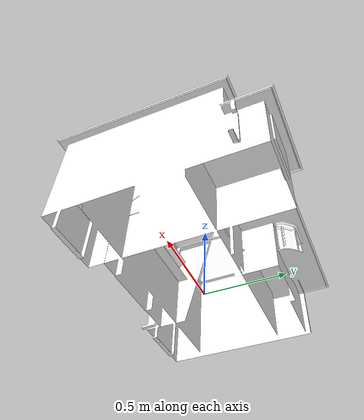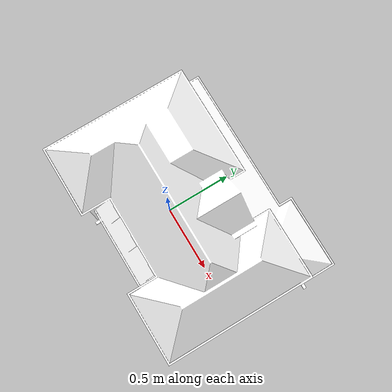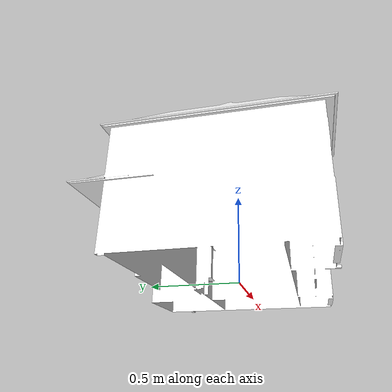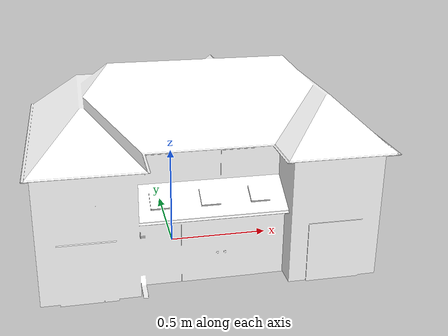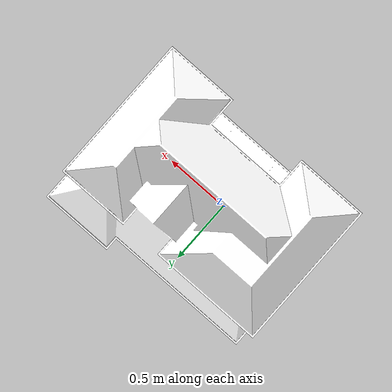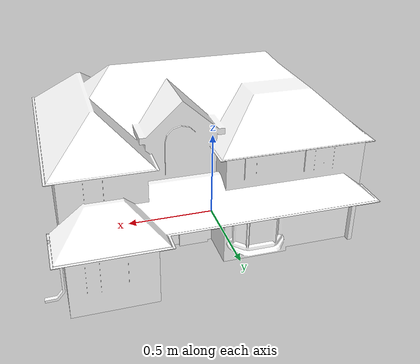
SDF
<?xml version="1.0" ?>
<sdf version="1.5">
  <model name="House 2">
    <static>true</static>
    <link name="link">
      <collision name="collision">
        <geometry>
          <mesh>
            <uri>model://house_2/meshes/house_2.dae</uri>
      <scale>0.2 0.2 0.2</scale>
            <scale>1.5 1.5 1.5</scale>
          </mesh>
        </geometry>
      </collision>
      <visual name="visual">
        <geometry>
          <mesh>
            <uri>model://house_2/meshes/house_2.dae</uri>
      <scale>0.2 0.2 0.2</scale>
            <scale>1.5 1.5 1.5</scale>
          </mesh>
        </geometry>
        <material>
          <script>
            <uri>model://house_2/materials/scripts</uri>
            <uri>model://house_2/materials/scripts</uri>
            <uri>model://house_2/materials/textures</uri>
            <uri>model://house_1/materials/textures</uri>
            <name>House_2/Diffuse</name>
          </script>
          <shader type="normal_map_tangent_space">
            <normal_map>model://house_1/materials/textures/House_1_Normal.png</normal_map>
          </shader>
        </material>
      </visual>
    </link>
  </model>
</sdf>
